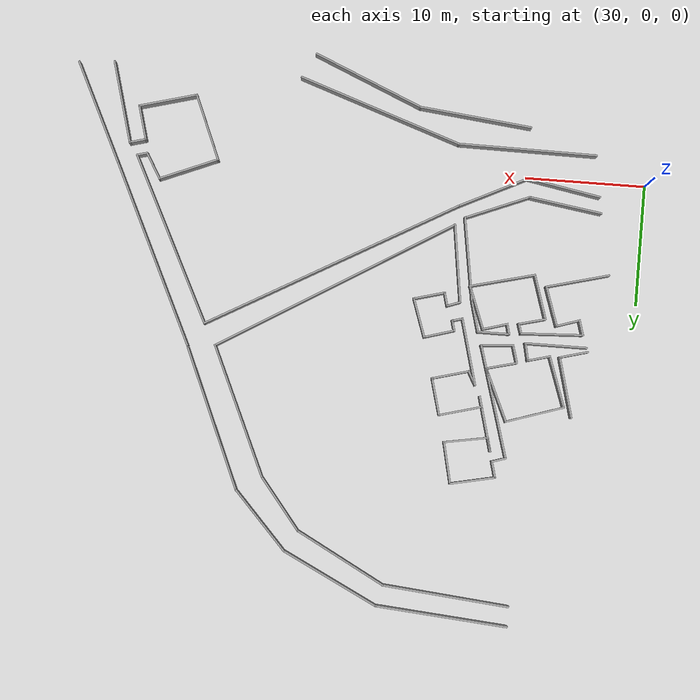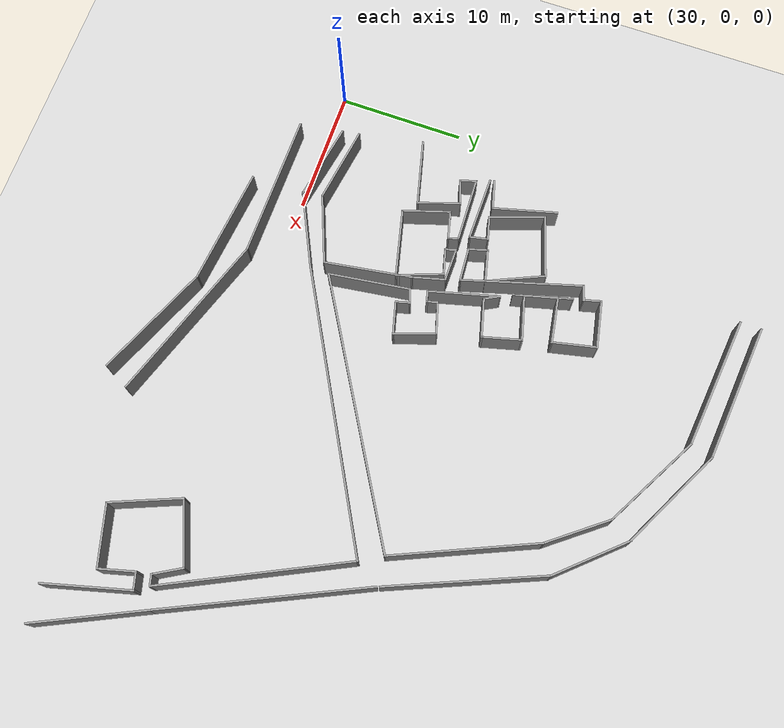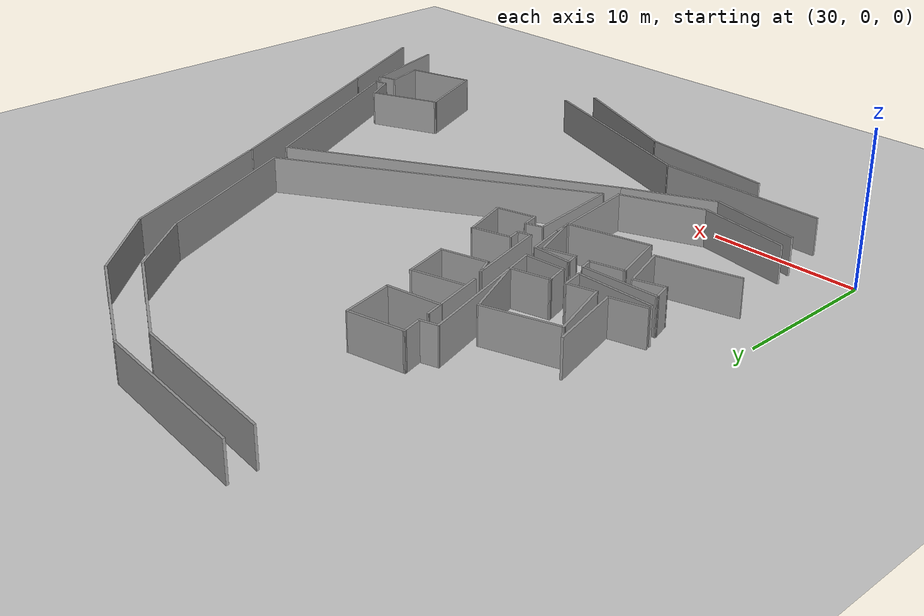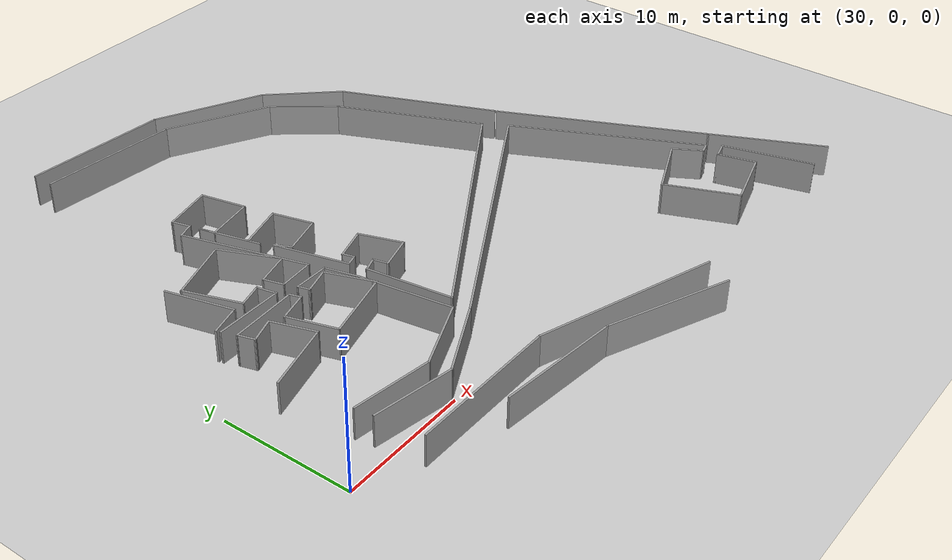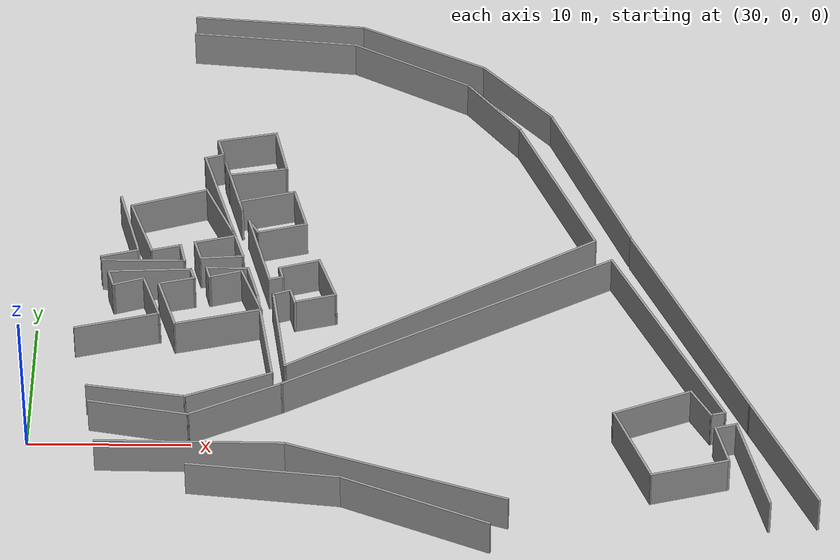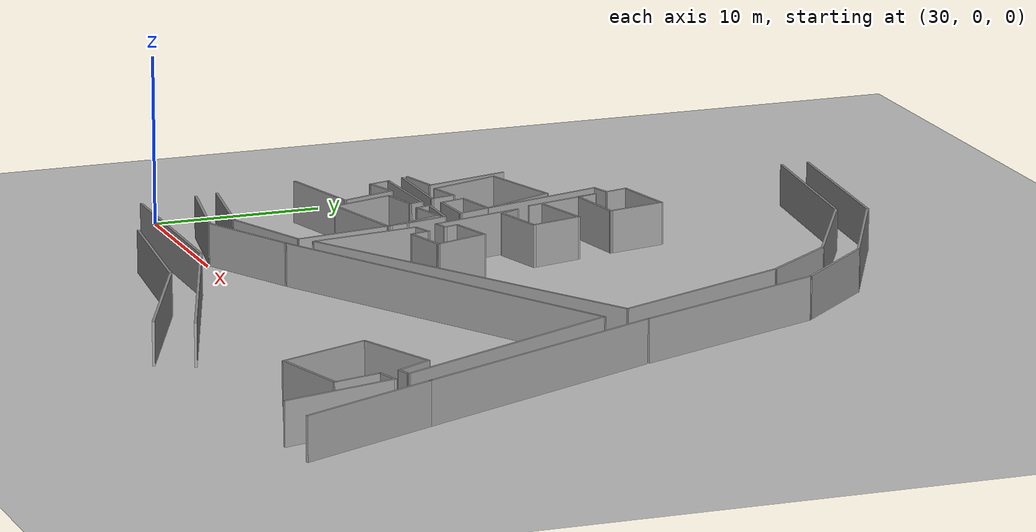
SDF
<sdf version="1.7">
 <world name="default">
  <include><uri>model://sun</uri></include>
  <include><uri>model://ground_plane</uri></include>
  <model name="final_max_v1">
   <pose>-2.52311 0.669104 0 0 -0 0</pose>
   <link name="Wall_122">
    <collision name="Wall_122_Collision">
     <geometry><box><size>11.1366 0.15 2.5</size></box></geometry>
     <pose>0 0 1.25 0 -0 0</pose>
    </collision>
    <visual name="Wall_122_Visual">
     <pose>0 0 1.25 0 -0 0</pose>
     <geometry><box><size>11.1366 0.15 2.5</size></box></geometry>
     <material>
      <script><uri>file://media/materials/scripts/gazebo.material</uri><name>Gazebo/Grey</name></script>
      <ambient>1 1 1 1</ambient>
     </material>
     <meta><layer>0</layer></meta>
    </visual>
    <pose>46.89 36.2808 0 0 -0 -0.083837</pose>
   </link>
   <link name="Wall_123">
    <collision name="Wall_123_Collision">
     <geometry><box><size>8.99588 0.15 2.5</size></box></geometry>
     <pose>0 0 1.25 0 -0 0</pose>
    </collision>
    <visual name="Wall_123_Visual">
     <pose>0 0 1.25 0 -0 0</pose>
     <geometry><box><size>8.99588 0.15 2.5</size></box></geometry>
     <material>
      <script><uri>file://media/materials/scripts/gazebo.material</uri><name>Gazebo/Grey</name></script>
      <ambient>1 1 1 1</ambient>
     </material>
     <meta><layer>0</layer></meta>
    </visual>
    <pose>56.32 33.8428 0 0 -0 -0.463648</pose>
   </link>
   <link name="Wall_124">
    <collision name="Wall_124_Collision">
     <geometry><box><size>6.5786 0.15 2.5</size></box></geometry>
     <pose>0 0 1.25 0 -0 0</pose>
    </collision>
    <visual name="Wall_124_Visual">
     <pose>0 0 1.25 0 -0 0</pose>
     <geometry><box><size>6.5786 0.15 2.5</size></box></geometry>
     <material>
      <script><uri>file://media/materials/scripts/gazebo.material</uri><name>Gazebo/Grey</name></script>
      <ambient>1 1 1 1</ambient>
     </material>
     <meta><layer>0</layer></meta>
    </visual>
    <pose>62.4457 29.4933 0 0 -0 -0.829799</pose>
   </link>
   <link name="Wall_136">
    <collision name="Wall_136_Collision">
     <geometry><box><size>9.49695 0.15 2.5</size></box></geometry>
     <pose>0 0 1.25 0 -0 0</pose>
    </collision>
    <visual name="Wall_136_Visual">
     <pose>0 0 1.25 0 -0 0</pose>
     <geometry><box><size>9.49695 0.15 2.5</size></box></geometry>
     <material>
      <script><uri>file://media/materials/scripts/gazebo.material</uri><name>Gazebo/Grey</name></script>
      <ambient>1 1 1 1</ambient>
     </material>
     <meta><layer>0</layer></meta>
    </visual>
    <pose>47.1077 -5.22792 0 0 -0 -0.108483</pose>
   </link>
   <link name="Wall_137">
    <collision name="Wall_137_Collision">
     <geometry><box><size>9.83843 0.15 2.5</size></box></geometry>
     <pose>0 0 1.25 0 -0 0</pose>
    </collision>
    <visual name="Wall_137_Visual">
     <pose>0 0 1.25 0 -0 0</pose>
     <geometry><box><size>9.83843 0.15 2.5</size></box></geometry>
     <material>
      <script><uri>file://media/materials/scripts/gazebo.material</uri><name>Gazebo/Grey</name></script>
      <ambient>1 1 1 1</ambient>
     </material>
     <meta><layer>0</layer></meta>
    </visual>
    <pose>56.2157 -7.61992 0 0 -0 -0.399904</pose>
   </link>
   <link name="Wall_223">
    <collision name="Wall_223_Collision">
     <geometry><box><size>10.6867 0.15 2.5</size></box></geometry>
     <pose>0 0 1.25 0 -0 0</pose>
    </collision>
    <visual name="Wall_223_Visual">
     <pose>0 0 1.25 0 -0 0</pose>
     <geometry><box><size>10.6867 0.15 2.5</size></box></geometry>
     <material>
      <script><uri>file://media/materials/scripts/gazebo.material</uri><name>Gazebo/Grey</name></script>
      <ambient>1 1 1 1</ambient>
     </material>
     <meta><layer>0</layer></meta>
    </visual>
    <pose>46.6509 34.5758 0 0 -0 -0.096193</pose>
   </link>
   <link name="Wall_224">
    <collision name="Wall_224_Collision">
     <geometry><box><size>8.50581 0.15 2.5</size></box></geometry>
     <pose>0 0 1.25 0 -0 0</pose>
    </collision>
    <visual name="Wall_224_Visual">
     <pose>0 0 1.25 0 -0 0</pose>
     <geometry><box><size>8.50581 0.15 2.5</size></box></geometry>
     <material>
      <script><uri>file://media/materials/scripts/gazebo.material</uri><name>Gazebo/Grey</name></script>
      <ambient>1 1 1 1</ambient>
     </material>
     <meta><layer>0</layer></meta>
    </visual>
    <pose>55.5749 32.0918 0 0 -0 -0.493196</pose>
   </link>
   <link name="Wall_225">
    <collision name="Wall_225_Collision">
     <geometry><box><size>5.52393 0.15 2.5</size></box></geometry>
     <pose>0 0 1.25 0 -0 0</pose>
    </collision>
    <visual name="Wall_225_Visual">
     <pose>0 0 1.25 0 -0 0</pose>
     <geometry><box><size>5.52393 0.15 2.5</size></box></geometry>
     <material>
      <script><uri>file://media/materials/scripts/gazebo.material</uri><name>Gazebo/Grey</name></script>
      <ambient>1 1 1 1</ambient>
     </material>
     <meta><layer>0</layer></meta>
    </visual>
    <pose>60.9109 27.9978 0 0 -0 -0.90675</pose>
   </link>
   <link name="Wall_226">
    <collision name="Wall_226_Collision">
     <geometry><box><size>11.7237 0.15 2.5</size></box></geometry>
     <pose>0 0 1.25 0 -0 0</pose>
    </collision>
    <visual name="Wall_226_Visual">
     <pose>0 0 1.25 0 -0 0</pose>
     <geometry><box><size>11.7237 0.15 2.5</size></box></geometry>
     <material>
      <script><uri>file://media/materials/scripts/gazebo.material</uri><name>Gazebo/Grey</name></script>
      <ambient>1 1 1 1</ambient>
     </material>
     <meta><layer>0</layer></meta>
    </visual>
    <pose>64.9129 20.5918 0 0 -0 -1.15338</pose>
   </link>
   <link name="Wall_229">
    <collision name="Wall_229_Collision">
     <geometry><box><size>12.5433 0.15 2.5</size></box></geometry>
     <pose>0 0 1.25 0 -0 0</pose>
    </collision>
    <visual name="Wall_229_Visual">
     <pose>0 0 1.25 0 -0 0</pose>
     <geometry><box><size>12.5433 0.15 2.5</size></box></geometry>
     <material>
      <script><uri>file://media/materials/scripts/gazebo.material</uri><name>Gazebo/Grey</name></script>
      <ambient>1 1 1 1</ambient>
     </material>
     <meta><layer>0</layer></meta>
    </visual>
    <pose>67.0397 21.4191 0 0 -0 -1.16884</pose>
   </link>
   <link name="Wall_246">
    <collision name="Wall_246_Collision">
     <geometry><box><size>5.25 0.15 2.5</size></box></geometry>
     <pose>0 0 1.25 0 -0 0</pose>
    </collision>
    <visual name="Wall_246_Visual">
     <pose>0 0 1.25 0 -0 0</pose>
     <geometry><box><size>5.25 0.15 2.5</size></box></geometry>
     <material>
      <script><uri>file://media/materials/scripts/gazebo.material</uri><name>Gazebo/Grey</name></script>
      <ambient>1 1 1 1</ambient>
     </material>
     <meta><layer>0</layer></meta>
    </visual>
    <pose>38.0136 16.6136 0 0 -0 -1.309</pose>
   </link>
   <link name="Wall_247">
    <collision name="Wall_247_Collision">
     <geometry><box><size>2.5 0.15 2.5</size></box></geometry>
     <pose>0 0 1.25 0 -0 0</pose>
    </collision>
    <visual name="Wall_247_Visual">
     <pose>0 0 1.25 0 -0 0</pose>
     <geometry><box><size>2.5 0.15 2.5</size></box></geometry>
     <material>
      <script><uri>file://media/materials/scripts/gazebo.material</uri><name>Gazebo/Grey</name></script>
      <ambient>1 1 1 1</ambient>
     </material>
     <meta><layer>0</layer></meta>
    </visual>
    <pose>37.5386 13.8464 0 0 -0 -2.87979</pose>
   </link>
   <link name="Wall_249">
    <collision name="Wall_249_Collision">
     <geometry><box><size>5.25 0.15 2.5</size></box></geometry>
     <pose>0 0 1.25 0 -0 0</pose>
    </collision>
    <visual name="Wall_249_Visual">
     <pose>0 0 1.25 0 -0 0</pose>
     <geometry><box><size>5.25 0.15 2.5</size></box></geometry>
     <material>
      <script><uri>file://media/materials/scripts/gazebo.material</uri><name>Gazebo/Grey</name></script>
      <ambient>1 1 1 1</ambient>
     </material>
     <meta><layer>0</layer></meta>
    </visual>
    <pose>39.0442 13.2042 0 0 -0 0</pose>
   </link>
   <link name="Wall_250">
    <collision name="Wall_250_Collision">
     <geometry><box><size>1.59344 0.15 2.5</size></box></geometry>
     <pose>0 0 1.25 0 -0 0</pose>
    </collision>
    <visual name="Wall_250_Visual">
     <pose>0 0 1.25 0 -0 0</pose>
     <geometry><box><size>1.59344 0.15 2.5</size></box></geometry>
     <material>
      <script><uri>file://media/materials/scripts/gazebo.material</uri><name>Gazebo/Grey</name></script>
      <ambient>1 1 1 1</ambient>
     </material>
     <meta><layer>0</layer></meta>
    </visual>
    <pose>41.4428 13.9098 0 0 -0 1.78212</pose>
   </link>
   <link name="Wall_251">
    <collision name="Wall_251_Collision">
     <geometry><box><size>2 0.15 2.5</size></box></geometry>
     <pose>0 0 1.25 0 -0 0</pose>
    </collision>
    <visual name="Wall_251_Visual">
     <pose>0 0 1.25 0 -0 0</pose>
     <geometry><box><size>2 0.15 2.5</size></box></geometry>
     <material>
      <script><uri>file://media/materials/scripts/gazebo.material</uri><name>Gazebo/Grey</name></script>
      <ambient>1 1 1 1</ambient>
     </material>
     <meta><layer>0</layer></meta>
    </visual>
    <pose>40.3979 14.3761 0 0 -0 -2.87979</pose>
   </link>
   <link name="Wall_252">
    <collision name="Wall_252_Collision">
     <geometry><box><size>4.54595 0.15 2.5</size></box></geometry>
     <pose>0 0 1.25 0 -0 0</pose>
    </collision>
    <visual name="Wall_252_Visual">
     <pose>0 0 1.25 0 -0 0</pose>
     <geometry><box><size>4.54595 0.15 2.5</size></box></geometry>
     <material>
      <script><uri>file://media/materials/scripts/gazebo.material</uri><name>Gazebo/Grey</name></script>
      <ambient>1 1 1 1</ambient>
     </material>
     <meta><layer>0</layer></meta>
    </visual>
    <pose>38.7724 16.2092 0 0 -0 1.91035</pose>
   </link>
   <link name="Wall_253">
    <collision name="Wall_253_Collision">
     <geometry><box><size>5.09377 0.15 2.5</size></box></geometry>
     <pose>0 0 1.25 0 -0 0</pose>
    </collision>
    <visual name="Wall_253_Visual">
     <pose>0 0 1.25 0 -0 0</pose>
     <geometry><box><size>5.09377 0.15 2.5</size></box></geometry>
     <material>
      <script><uri>file://media/materials/scripts/gazebo.material</uri><name>Gazebo/Grey</name></script>
      <ambient>1 1 1 1</ambient>
     </material>
     <meta><layer>0</layer></meta>
    </visual>
    <pose>40.3922 19.0425 0 0 -0 0.312901</pose>
   </link>
   <link name="Wall_254">
    <collision name="Wall_254_Collision">
     <geometry><box><size>4.85576 0.15 2.5</size></box></geometry>
     <pose>0 0 1.25 0 -0 0</pose>
    </collision>
    <visual name="Wall_254_Visual">
     <pose>0 0 1.25 0 -0 0</pose>
     <geometry><box><size>4.85576 0.15 2.5</size></box></geometry>
     <material>
      <script><uri>file://media/materials/scripts/gazebo.material</uri><name>Gazebo/Grey</name></script>
      <ambient>1 1 1 1</ambient>
     </material>
     <meta><layer>0</layer></meta>
    </visual>
    <pose>43.7125 17.6591 0 0 -0 -1.1466</pose>
   </link>
   <link name="Wall_255">
    <collision name="Wall_255_Collision">
     <geometry><box><size>2.71685 0.15 2.5</size></box></geometry>
     <pose>0 0 1.25 0 -0 0</pose>
    </collision>
    <visual name="Wall_255_Visual">
     <pose>0 0 1.25 0 -0 0</pose>
     <geometry><box><size>2.71685 0.15 2.5</size></box></geometry>
     <material>
      <script><uri>file://media/materials/scripts/gazebo.material</uri><name>Gazebo/Grey</name></script>
      <ambient>1 1 1 1</ambient>
     </material>
     <meta><layer>0</layer></meta>
    </visual>
    <pose>43.4358 15.2035 0 0 -0 -2.89661</pose>
   </link>
   <link name="Wall_256">
    <collision name="Wall_256_Collision">
     <geometry><box><size>1.66075 0.15 2.5</size></box></geometry>
     <pose>0 0 1.25 0 -0 0</pose>
    </collision>
    <visual name="Wall_256_Visual">
     <pose>0 0 1.25 0 -0 0</pose>
     <geometry><box><size>1.66075 0.15 2.5</size></box></geometry>
     <material>
      <script><uri>file://media/materials/scripts/gazebo.material</uri><name>Gazebo/Grey</name></script>
      <ambient>1 1 1 1</ambient>
     </material>
     <meta><layer>0</layer></meta>
    </visual>
    <pose>42.3982 14.1659 0 0 -0 -1.2925</pose>
   </link>
   <link name="Wall_257">
    <collision name="Wall_257_Collision">
     <geometry><box><size>2.78673 0.15 2.5</size></box></geometry>
     <pose>0 0 1.25 0 -0 0</pose>
    </collision>
    <visual name="Wall_257_Visual">
     <pose>0 0 1.25 0 -0 0</pose>
     <geometry><box><size>2.78673 0.15 2.5</size></box></geometry>
     <material>
      <script><uri>file://media/materials/scripts/gazebo.material</uri><name>Gazebo/Grey</name></script>
      <ambient>1 1 1 1</ambient>
     </material>
     <meta><layer>0</layer></meta>
    </visual>
    <pose>43.92 13.5433 0 0 -0 0.078784</pose>
   </link>
   <link name="Wall_258">
    <collision name="Wall_258_Collision">
     <geometry><box><size>9.73731 0.15 2.5</size></box></geometry>
     <pose>0 0 1.25 0 -0 0</pose>
    </collision>
    <visual name="Wall_258_Visual">
     <pose>0 0 1.25 0 -0 0</pose>
     <geometry><box><size>9.73731 0.15 2.5</size></box></geometry>
     <material>
      <script><uri>file://media/materials/scripts/gazebo.material</uri><name>Gazebo/Grey</name></script>
      <ambient>1 1 1 1</ambient>
     </material>
     <meta><layer>0</layer></meta>
    </visual>
    <pose>43.8854 18.2471 0 0 -0 1.85603</pose>
   </link>
   <link name="Wall_259">
    <collision name="Wall_259_Collision">
     <geometry><box><size>1.30954 0.15 2.5</size></box></geometry>
     <pose>0 0 1.25 0 -0 0</pose>
    </collision>
    <visual name="Wall_259_Visual">
     <pose>0 0 1.25 0 -0 0</pose>
     <geometry><box><size>1.30954 0.15 2.5</size></box></geometry>
     <material>
      <script><uri>file://media/materials/scripts/gazebo.material</uri><name>Gazebo/Grey</name></script>
      <ambient>1 1 1 1</ambient>
     </material>
     <meta><layer>0</layer></meta>
    </visual>
    <pose>43.0899 23.02 0 0 -0 0.302885</pose>
   </link>
   <link name="Wall_260">
    <collision name="Wall_260_Collision">
     <geometry><box><size>1.5 0.15 2.5</size></box></geometry>
     <pose>0 0 1.25 0 -0 0</pose>
    </collision>
    <visual name="Wall_260_Visual">
     <pose>0 0 1.25 0 -0 0</pose>
     <geometry><box><size>1.5 0.15 2.5</size></box></geometry>
     <material>
      <script><uri>file://media/materials/scripts/gazebo.material</uri><name>Gazebo/Grey</name></script>
      <ambient>1 1 1 1</ambient>
     </material>
     <meta><layer>0</layer></meta>
    </visual>
    <pose>43.4686 23.8449 0 0 -0 1.8326</pose>
   </link>
   <link name="Wall_261">
    <collision name="Wall_261_Collision">
     <geometry><box><size>3.89984 0.15 2.5</size></box></geometry>
     <pose>0 0 1.25 0 -0 0</pose>
    </collision>
    <visual name="Wall_261_Visual">
     <pose>0 0 1.25 0 -0 0</pose>
     <geometry><box><size>3.89984 0.15 2.5</size></box></geometry>
     <material>
      <script><uri>file://media/materials/scripts/gazebo.material</uri><name>Gazebo/Grey</name></script>
      <ambient>1 1 1 1</ambient>
     </material>
     <meta><layer>0</layer></meta>
    </visual>
    <pose>45.1287 24.8825 0 0 -0 0.207133</pose>
   </link>
   <link name="Wall_262">
    <collision name="Wall_262_Collision">
     <geometry><box><size>3.6238 0.15 2.5</size></box></geometry>
     <pose>0 0 1.25 0 -0 0</pose>
    </collision>
    <visual name="Wall_262_Visual">
     <pose>0 0 1.25 0 -0 0</pose>
     <geometry><box><size>3.6238 0.15 2.5</size></box></geometry>
     <material>
      <script><uri>file://media/materials/scripts/gazebo.material</uri><name>Gazebo/Grey</name></script>
      <ambient>1 1 1 1</ambient>
     </material>
     <meta><layer>0</layer></meta>
    </visual>
    <pose>47.344 23.5733 0 0 -0 -1.34997</pose>
   </link>
   <link name="Wall_263">
    <collision name="Wall_263_Collision">
     <geometry><box><size>3.80044 0.15 2.5</size></box></geometry>
     <pose>0 0 1.25 0 -0 0</pose>
    </collision>
    <visual name="Wall_263_Visual">
     <pose>0 0 1.25 0 -0 0</pose>
     <geometry><box><size>3.80044 0.15 2.5</size></box></geometry>
     <material>
      <script><uri>file://media/materials/scripts/gazebo.material</uri><name>Gazebo/Grey</name></script>
      <ambient>1 1 1 1</ambient>
     </material>
     <meta><layer>0</layer></meta>
    </visual>
    <pose>45.926 21.5673 0 0 -0 -2.97021</pose>
   </link>
   <link name="Wall_264">
    <collision name="Wall_264_Collision">
     <geometry><box><size>1.29082 0.15 2.5</size></box></geometry>
     <pose>0 0 1.25 0 -0 0</pose>
    </collision>
    <visual name="Wall_264_Visual">
     <pose>0 0 1.25 0 -0 0</pose>
     <geometry><box><size>1.29082 0.15 2.5</size></box></geometry>
     <material>
      <script><uri>file://media/materials/scripts/gazebo.material</uri><name>Gazebo/Grey</name></script>
      <ambient>1 1 1 1</ambient>
     </material>
     <meta><layer>0</layer></meta>
    </visual>
    <pose>43.9892 21.8094 0 0 -0 1.81577</pose>
   </link>
   <link name="Wall_265">
    <collision name="Wall_265_Collision">
     <geometry><box><size>4.75 0.15 2.5</size></box></geometry>
     <pose>0 0 1.25 0 -0 0</pose>
    </collision>
    <visual name="Wall_265_Visual">
     <pose>0 0 1.25 0 -0 0</pose>
     <geometry><box><size>4.75 0.15 2.5</size></box></geometry>
     <material>
      <script><uri>file://media/materials/scripts/gazebo.material</uri><name>Gazebo/Grey</name></script>
      <ambient>1 1 1 1</ambient>
     </material>
     <meta><layer>0</layer></meta>
    </visual>
    <pose>44.4461 20.1412 0 0 -0 -1.309</pose>
   </link>
   <link name="Wall_266">
    <collision name="Wall_266_Collision">
     <geometry><box><size>1 0.15 2.5</size></box></geometry>
     <pose>0 0 1.25 0 -0 0</pose>
    </collision>
    <visual name="Wall_266_Visual">
     <pose>0 0 1.25 0 -0 0</pose>
     <geometry><box><size>1 0.15 2.5</size></box></geometry>
     <material>
      <script><uri>file://media/materials/scripts/gazebo.material</uri><name>Gazebo/Grey</name></script>
      <ambient>1 1 1 1</ambient>
     </material>
     <meta><layer>0</layer></meta>
    </visual>
    <pose>44.9314 18.3301 0 0 -0 1.8326</pose>
   </link>
   <link name="Wall_267">
    <collision name="Wall_267_Collision">
     <geometry><box><size>3.75 0.15 2.5</size></box></geometry>
     <pose>0 0 1.25 0 -0 0</pose>
    </collision>
    <visual name="Wall_267_Visual">
     <pose>0 0 1.25 0 -0 0</pose>
     <geometry><box><size>3.75 0.15 2.5</size></box></geometry>
     <material>
      <script><uri>file://media/materials/scripts/gazebo.material</uri><name>Gazebo/Grey</name></script>
      <ambient>1 1 1 1</ambient>
     </material>
     <meta><layer>0</layer></meta>
    </visual>
    <pose>46.5601 19.2065 0 0 -0 0.261799</pose>
   </link>
   <link name="Wall_268">
    <collision name="Wall_268_Collision">
     <geometry><box><size>3.25 0.15 2.5</size></box></geometry>
     <pose>0 0 1.25 0 -0 0</pose>
    </collision>
    <visual name="Wall_268_Visual">
     <pose>0 0 1.25 0 -0 0</pose>
     <geometry><box><size>3.25 0.15 2.5</size></box></geometry>
     <material>
      <script><uri>file://media/materials/scripts/gazebo.material</uri><name>Gazebo/Grey</name></script>
      <ambient>1 1 1 1</ambient>
     </material>
     <meta><layer>0</layer></meta>
    </visual>
    <pose>48.6999 18.1752 0 0 -0 -1.309</pose>
   </link>
   <link name="Wall_269">
    <collision name="Wall_269_Collision">
     <geometry><box><size>3.25 0.15 2.5</size></box></geometry>
     <pose>0 0 1.25 0 -0 0</pose>
    </collision>
    <visual name="Wall_269_Visual">
     <pose>0 0 1.25 0 -0 0</pose>
     <geometry><box><size>3.25 0.15 2.5</size></box></geometry>
     <material>
      <script><uri>file://media/materials/scripts/gazebo.material</uri><name>Gazebo/Grey</name></script>
      <ambient>1 1 1 1</ambient>
     </material>
     <meta><layer>0</layer></meta>
    </visual>
    <pose>47.6039 16.2768 0 0 -0 -2.87979</pose>
   </link>
   <link name="Wall_270">
    <collision name="Wall_270_Collision">
     <geometry><box><size>1.3937 0.15 2.5</size></box></geometry>
     <pose>0 0 1.25 0 -0 0</pose>
    </collision>
    <visual name="Wall_270_Visual">
     <pose>0 0 1.25 0 -0 0</pose>
     <geometry><box><size>1.3937 0.15 2.5</size></box></geometry>
     <material>
      <script><uri>file://media/materials/scripts/gazebo.material</uri><name>Gazebo/Grey</name></script>
      <ambient>1 1 1 1</ambient>
     </material>
     <meta><layer>0</layer></meta>
    </visual>
    <pose>45.8088 16.4215 0 0 -0 2.07031</pose>
   </link>
   <link name="Wall_271">
    <collision name="Wall_271_Collision">
     <geometry><box><size>5.75 0.15 2.5</size></box></geometry>
     <pose>0 0 1.25 0 -0 0</pose>
    </collision>
    <visual name="Wall_271_Visual">
     <pose>0 0 1.25 0 -0 0</pose>
     <geometry><box><size>5.75 0.15 2.5</size></box></geometry>
     <material>
      <script><uri>file://media/materials/scripts/gazebo.material</uri><name>Gazebo/Grey</name></script>
      <ambient>1 1 1 1</ambient>
     </material>
     <meta><layer>0</layer></meta>
    </visual>
    <pose>46.2356 14.2628 0 0 -0 -1.309</pose>
   </link>
   <link name="Wall_272">
    <collision name="Wall_272_Collision">
     <geometry><box><size>1 0.15 2.5</size></box></geometry>
     <pose>0 0 1.25 0 -0 0</pose>
    </collision>
    <visual name="Wall_272_Visual">
     <pose>0 0 1.25 0 -0 0</pose>
     <geometry><box><size>1 0.15 2.5</size></box></geometry>
     <material>
      <script><uri>file://media/materials/scripts/gazebo.material</uri><name>Gazebo/Grey</name></script>
      <ambient>1 1 1 1</ambient>
     </material>
     <meta><layer>0</layer></meta>
    </visual>
    <pose>47.3709 11.6682 0 0 -0 0.261799</pose>
   </link>
   <link name="Wall_273">
    <collision name="Wall_273_Collision">
     <geometry><box><size>1 0.15 2.5</size></box></geometry>
     <pose>0 0 1.25 0 -0 0</pose>
    </collision>
    <visual name="Wall_273_Visual">
     <pose>0 0 1.25 0 -0 0</pose>
     <geometry><box><size>1 0.15 2.5</size></box></geometry>
     <material>
      <script><uri>file://media/materials/scripts/gazebo.material</uri><name>Gazebo/Grey</name></script>
      <ambient>1 1 1 1</ambient>
     </material>
     <meta><layer>0</layer></meta>
    </visual>
    <pose>47.6714 12.1887 0 0 -0 1.8326</pose>
   </link>
   <link name="Wall_274">
    <collision name="Wall_274_Collision">
     <geometry><box><size>2.70849 0.15 2.5</size></box></geometry>
     <pose>0 0 1.25 0 -0 0</pose>
    </collision>
    <visual name="Wall_274_Visual">
     <pose>0 0 1.25 0 -0 0</pose>
     <geometry><box><size>2.70849 0.15 2.5</size></box></geometry>
     <material>
      <script><uri>file://media/materials/scripts/gazebo.material</uri><name>Gazebo/Grey</name></script>
      <ambient>1 1 1 1</ambient>
     </material>
     <meta><layer>0</layer></meta>
    </visual>
    <pose>48.7888 12.9596 0 0 -0 0.285615</pose>
   </link>
   <link name="Wall_275">
    <collision name="Wall_275_Collision">
     <geometry><box><size>3.45989 0.15 2.5</size></box></geometry>
     <pose>0 0 1.25 0 -0 0</pose>
    </collision>
    <visual name="Wall_275_Visual">
     <pose>0 0 1.25 0 -0 0</pose>
     <geometry><box><size>3.45989 0.15 2.5</size></box></geometry>
     <material>
      <script><uri>file://media/materials/scripts/gazebo.material</uri><name>Gazebo/Grey</name></script>
      <ambient>1 1 1 1</ambient>
     </material>
     <meta><layer>0</layer></meta>
    </visual>
    <pose>50.5576 11.7562 0 0 -0 -1.23755</pose>
   </link>
   <link name="Wall_276">
    <collision name="Wall_276_Collision">
     <geometry><box><size>2.75 0.15 2.5</size></box></geometry>
     <pose>0 0 1.25 0 -0 0</pose>
    </collision>
    <visual name="Wall_276_Visual">
     <pose>0 0 1.25 0 -0 0</pose>
     <geometry><box><size>2.75 0.15 2.5</size></box></geometry>
     <material>
      <script><uri>file://media/materials/scripts/gazebo.material</uri><name>Gazebo/Grey</name></script>
      <ambient>1 1 1 1</ambient>
     </material>
     <meta><layer>0</layer></meta>
    </visual>
    <pose>49.8432 9.85581 0 0 -0 -2.87979</pose>
   </link>
   <link name="Wall_277">
    <collision name="Wall_277_Collision">
     <geometry><box><size>1.25 0.15 2.5</size></box></geometry>
     <pose>0 0 1.25 0 -0 0</pose>
    </collision>
    <visual name="Wall_277_Visual">
     <pose>0 0 1.25 0 -0 0</pose>
     <geometry><box><size>1.25 0.15 2.5</size></box></geometry>
     <material>
      <script><uri>file://media/materials/scripts/gazebo.material</uri><name>Gazebo/Grey</name></script>
      <ambient>1 1 1 1</ambient>
     </material>
     <meta><layer>0</layer></meta>
    </visual>
    <pose>48.4452 10.0506 0 0 -0 1.8326</pose>
   </link>
   <link name="Wall_279">
    <collision name="Wall_279_Collision">
     <geometry><box><size>2.75 0.15 2.5</size></box></geometry>
     <pose>0 0 1.25 0 -0 0</pose>
    </collision>
    <visual name="Wall_279_Visual">
     <pose>0 0 1.25 0 -0 0</pose>
     <geometry><box><size>2.75 0.15 2.5</size></box></geometry>
     <material>
      <script><uri>file://media/materials/scripts/gazebo.material</uri><name>Gazebo/Grey</name></script>
      <ambient>1 1 1 1</ambient>
     </material>
     <meta><layer>0</layer></meta>
    </visual>
    <pose>45.9379 11.294 0 0 -0 1.8326</pose>
   </link>
   <link name="Wall_280">
    <collision name="Wall_280_Collision">
     <geometry><box><size>2.75 0.15 2.5</size></box></geometry>
     <pose>0 0 1.25 0 -0 0</pose>
    </collision>
    <visual name="Wall_280_Visual">
     <pose>0 0 1.25 0 -0 0</pose>
     <geometry><box><size>2.75 0.15 2.5</size></box></geometry>
     <material>
      <script><uri>file://media/materials/scripts/gazebo.material</uri><name>Gazebo/Grey</name></script>
      <ambient>1 1 1 1</ambient>
     </material>
     <meta><layer>0</layer></meta>
    </visual>
    <pose>44.3014 12.5497 0 0 -0 3.14159</pose>
   </link>
   <link name="Wall_281">
    <collision name="Wall_281_Collision">
     <geometry><box><size>1 0.15 2.5</size></box></geometry>
     <pose>0 0 1.25 0 -0 0</pose>
    </collision>
    <visual name="Wall_281_Visual">
     <pose>0 0 1.25 0 -0 0</pose>
     <geometry><box><size>1 0.15 2.5</size></box></geometry>
     <material>
      <script><uri>file://media/materials/scripts/gazebo.material</uri><name>Gazebo/Grey</name></script>
      <ambient>1 1 1 1</ambient>
     </material>
     <meta><layer>0</layer></meta>
    </visual>
    <pose>43.1114 12.1392 0 0 -0 -1.309</pose>
   </link>
   <link name="Wall_282">
    <collision name="Wall_282_Collision">
     <geometry><box><size>2.21277 0.15 2.5</size></box></geometry>
     <pose>0 0 1.25 0 -0 0</pose>
    </collision>
    <visual name="Wall_282_Visual">
     <pose>0 0 1.25 0 -0 0</pose>
     <geometry><box><size>2.21277 0.15 2.5</size></box></geometry>
     <material>
      <script><uri>file://media/materials/scripts/gazebo.material</uri><name>Gazebo/Grey</name></script>
      <ambient>1 1 1 1</ambient>
     </material>
     <meta><layer>0</layer></meta>
    </visual>
    <pose>44.2128 12.0131 0 0 -0 0.27937</pose>
   </link>
   <link name="Wall_283">
    <collision name="Wall_283_Collision">
     <geometry><box><size>3.88124 0.15 2.5</size></box></geometry>
     <pose>0 0 1.25 0 -0 0</pose>
    </collision>
    <visual name="Wall_283_Visual">
     <pose>0 0 1.25 0 -0 0</pose>
     <geometry><box><size>3.88124 0.15 2.5</size></box></geometry>
     <material>
      <script><uri>file://media/materials/scripts/gazebo.material</uri><name>Gazebo/Grey</name></script>
      <ambient>1 1 1 1</ambient>
     </material>
     <meta><layer>0</layer></meta>
    </visual>
    <pose>45.8659 10.5532 0 0 -0 -1.20825</pose>
   </link>
   <link name="Wall_284">
    <collision name="Wall_284_Collision">
     <geometry><box><size>5.6061 0.15 2.5</size></box></geometry>
     <pose>0 0 1.25 0 -0 0</pose>
    </collision>
    <visual name="Wall_284_Visual">
     <pose>0 0 1.25 0 -0 0</pose>
     <geometry><box><size>5.6061 0.15 2.5</size></box></geometry>
     <material>
      <script><uri>file://media/materials/scripts/gazebo.material</uri><name>Gazebo/Grey</name></script>
      <ambient>1 1 1 1</ambient>
     </material>
     <meta><layer>0</layer></meta>
    </visual>
    <pose>43.8809 8.14718 0 0 -0 -2.89661</pose>
   </link>
   <link name="Wall_285">
    <collision name="Wall_285_Collision">
     <geometry><box><size>3.93562 0.15 2.5</size></box></geometry>
     <pose>0 0 1.25 0 -0 0</pose>
    </collision>
    <visual name="Wall_285_Visual">
     <pose>0 0 1.25 0 -0 0</pose>
     <geometry><box><size>3.93562 0.15 2.5</size></box></geometry>
     <material>
      <script><uri>file://media/materials/scripts/gazebo.material</uri><name>Gazebo/Grey</name></script>
      <ambient>1 1 1 1</ambient>
     </material>
     <meta><layer>0</layer></meta>
    </visual>
    <pose>40.6629 9.29002 0 0 -0 1.87747</pose>
   </link>
   <link name="Wall_286">
    <collision name="Wall_286_Collision">
     <geometry><box><size>2.38204 0.15 2.5</size></box></geometry>
     <pose>0 0 1.25 0 -0 0</pose>
    </collision>
    <visual name="Wall_286_Visual">
     <pose>0 0 1.25 0 -0 0</pose>
     <geometry><box><size>2.38204 0.15 2.5</size></box></geometry>
     <material>
      <script><uri>file://media/materials/scripts/gazebo.material</uri><name>Gazebo/Grey</name></script>
      <ambient>1 1 1 1</ambient>
     </material>
     <meta><layer>0</layer></meta>
    </visual>
    <pose>41.1742 11.3652 0 0 -0 0.244979</pose>
   </link>
   <link name="Wall_287">
    <collision name="Wall_287_Collision">
     <geometry><box><size>0.968127 0.15 2.5</size></box></geometry>
     <pose>0 0 1.25 0 -0 0</pose>
    </collision>
    <visual name="Wall_287_Visual">
     <pose>0 0 1.25 0 -0 0</pose>
     <geometry><box><size>0.968127 0.15 2.5</size></box></geometry>
     <material>
      <script><uri>file://media/materials/scripts/gazebo.material</uri><name>Gazebo/Grey</name></script>
      <ambient>1 1 1 1</ambient>
     </material>
     <meta><layer>0</layer></meta>
    </visual>
    <pose>42.1366 12.0268 0 0 -0 1.86929</pose>
   </link>
   <link name="Wall_288">
    <collision name="Wall_288_Collision">
     <geometry><box><size>5.2684 0.15 2.5</size></box></geometry>
     <pose>0 0 1.25 0 -0 0</pose>
    </collision>
    <visual name="Wall_288_Visual">
     <pose>0 0 1.25 0 -0 0</pose>
     <geometry><box><size>5.2684 0.15 2.5</size></box></geometry>
     <material>
      <script><uri>file://media/materials/scripts/gazebo.material</uri><name>Gazebo/Grey</name></script>
      <ambient>1 1 1 1</ambient>
     </material>
     <meta><layer>0</layer></meta>
    </visual>
    <pose>39.4599 12.2975 0 0 -0 -3.09457</pose>
   </link>
   <link name="Wall_289">
    <collision name="Wall_289_Collision">
     <geometry><box><size>1.40597 0.15 2.5</size></box></geometry>
     <pose>0 0 1.25 0 -0 0</pose>
    </collision>
    <visual name="Wall_289_Visual">
     <pose>0 0 1.25 0 -0 0</pose>
     <geometry><box><size>1.40597 0.15 2.5</size></box></geometry>
     <material>
      <script><uri>file://media/materials/scripts/gazebo.material</uri><name>Gazebo/Grey</name></script>
      <ambient>1 1 1 1</ambient>
     </material>
     <meta><layer>0</layer></meta>
    </visual>
    <pose>37.084 11.5757 0 0 -0 -1.27934</pose>
   </link>
   <link name="Wall_290">
    <collision name="Wall_290_Collision">
     <geometry><box><size>2.10926 0.15 2.5</size></box></geometry>
     <pose>0 0 1.25 0 -0 0</pose>
    </collision>
    <visual name="Wall_290_Visual">
     <pose>0 0 1.25 0 -0 0</pose>
     <geometry><box><size>2.10926 0.15 2.5</size></box></geometry>
     <material>
      <script><uri>file://media/materials/scripts/gazebo.material</uri><name>Gazebo/Grey</name></script>
      <ambient>1 1 1 1</ambient>
     </material>
     <meta><layer>0</layer></meta>
    </visual>
    <pose>38.1968 11.275 0 0 -0 0.312042</pose>
   </link>
   <link name="Wall_291">
    <collision name="Wall_291_Collision">
     <geometry><box><size>3.51678 0.15 2.5</size></box></geometry>
     <pose>0 0 1.25 0 -0 0</pose>
    </collision>
    <visual name="Wall_291_Visual">
     <pose>0 0 1.25 0 -0 0</pose>
     <geometry><box><size>3.51678 0.15 2.5</size></box></geometry>
     <material>
      <script><uri>file://media/materials/scripts/gazebo.material</uri><name>Gazebo/Grey</name></script>
      <ambient>1 1 1 1</ambient>
     </material>
     <meta><layer>0</layer></meta>
    </visual>
    <pose>39.6704 9.98175 0 0 -0 -1.2434</pose>
   </link>
   <link name="Wall_292">
    <collision name="Wall_292_Collision">
     <geometry><box><size>5.43122 0.15 2.5</size></box></geometry>
     <pose>0 0 1.25 0 -0 0</pose>
    </collision>
    <visual name="Wall_292_Visual">
     <pose>0 0 1.25 0 -0 0</pose>
     <geometry><box><size>5.43122 0.15 2.5</size></box></geometry>
     <material>
      <script><uri>file://media/materials/scripts/gazebo.material</uri><name>Gazebo/Grey</name></script>
      <ambient>1 1 1 1</ambient>
     </material>
     <meta><layer>0</layer></meta>
    </visual>
    <pose>37.6554 7.72613 0 0 -0 -2.88833</pose>
   </link>
   <link name="Wall_300">
    <collision name="Wall_300_Collision">
     <geometry><box><size>11.627 0.15 2.5</size></box></geometry>
     <pose>0 0 1.25 0 -0 0</pose>
    </collision>
    <visual name="Wall_300_Visual">
     <pose>0 0 1.25 0 -0 0</pose>
     <geometry><box><size>11.627 0.15 2.5</size></box></geometry>
     <material>
      <script><uri>file://media/materials/scripts/gazebo.material</uri><name>Gazebo/Grey</name></script>
      <ambient>1 1 1 1</ambient>
     </material>
     <meta><layer>0</layer></meta>
    </visual>
    <pose>42.5993 -2.85617 0 0 -0 -0.009391</pose>
   </link>
   <link name="Wall_301">
    <collision name="Wall_301_Collision">
     <geometry><box><size>14.3248 0.15 2.5</size></box></geometry>
     <pose>0 0 1.25 0 -0 0</pose>
    </collision>
    <visual name="Wall_301_Visual">
     <pose>0 0 1.25 0 -0 0</pose>
     <geometry><box><size>14.3248 0.15 2.5</size></box></geometry>
     <material>
      <script><uri>file://media/materials/scripts/gazebo.material</uri><name>Gazebo/Grey</name></script>
      <ambient>1 1 1 1</ambient>
     </material>
     <meta><layer>0</layer></meta>
    </visual>
    <pose>55.0472 -5.19275 0 0 -0 -0.327923</pose>
   </link>
   <link name="Wall_306">
    <collision name="Wall_306_Collision">
     <geometry><box><size>23.3769 0.15 2.5</size></box></geometry>
     <pose>0 0 1.25 0 -0 0</pose>
    </collision>
    <visual name="Wall_306_Visual">
     <pose>0 0 1.25 0 -0 0</pose>
     <geometry><box><size>23.3769 0.15 2.5</size></box></geometry>
     <material>
      <script><uri>file://media/materials/scripts/gazebo.material</uri><name>Gazebo/Grey</name></script>
      <ambient>1 1 1 1</ambient>
     </material>
     <meta><layer>0</layer></meta>
    </visual>
    <pose>58.1379 7.89318 0 0 -0 -2.63362</pose>
   </link>
   <link name="Wall_312">
    <collision name="Wall_312_Collision">
     <geometry><box><size>6.31592 0.15 2.5</size></box></geometry>
     <pose>0 0 1.25 0 -0 0</pose>
    </collision>
    <visual name="Wall_312_Visual">
     <pose>0 0 1.25 0 -0 0</pose>
     <geometry><box><size>6.31592 0.15 2.5</size></box></geometry>
     <material>
      <script><uri>file://media/materials/scripts/gazebo.material</uri><name>Gazebo/Grey</name></script>
      <ambient>1 1 1 1</ambient>
     </material>
     <meta><layer>0</layer></meta>
    </visual>
    <pose>39.3633 0.071902 0 0 -0 -0.179095</pose>
   </link>
   <link name="Wall_313">
    <collision name="Wall_313_Collision">
     <geometry><box><size>6.37091 0.15 2.5</size></box></geometry>
     <pose>0 0 1.25 0 -0 0</pose>
    </collision>
    <visual name="Wall_313_Visual">
     <pose>0 0 1.25 0 -0 0</pose>
     <geometry><box><size>6.37091 0.15 2.5</size></box></geometry>
     <material>
      <script><uri>file://media/materials/scripts/gazebo.material</uri><name>Gazebo/Grey</name></script>
      <ambient>1 1 1 1</ambient>
     </material>
     <meta><layer>0</layer></meta>
    </visual>
    <pose>45.1939 0.883513 0 0 -0 0.45281</pose>
   </link>
   <link name="Wall_315">
    <collision name="Wall_315_Collision">
     <geometry><box><size>7.1054 0.15 2.5</size></box></geometry>
     <pose>0 0 1.25 0 -0 0</pose>
    </collision>
    <visual name="Wall_315_Visual">
     <pose>0 0 1.25 0 -0 0</pose>
     <geometry><box><size>7.1054 0.15 2.5</size></box></geometry>
     <material>
      <script><uri>file://media/materials/scripts/gazebo.material</uri><name>Gazebo/Grey</name></script>
      <ambient>1 1 1 1</ambient>
     </material>
     <meta><layer>0</layer></meta>
    </visual>
    <pose>46.8212 6.60391 0 0 -0 -1.41289</pose>
   </link>
   <link name="Wall_316">
    <collision name="Wall_316_Collision">
     <geometry><box><size>5.79064 0.15 2.5</size></box></geometry>
     <pose>0 0 1.25 0 -0 0</pose>
    </collision>
    <visual name="Wall_316_Visual">
     <pose>0 0 1.25 0 -0 0</pose>
     <geometry><box><size>5.79064 0.15 2.5</size></box></geometry>
     <material>
      <script><uri>file://media/materials/scripts/gazebo.material</uri><name>Gazebo/Grey</name></script>
      <ambient>1 1 1 1</ambient>
     </material>
     <meta><layer>0</layer></meta>
    </visual>
    <pose>44.7516 2.11685 0 0 -0 -2.75911</pose>
   </link>
   <link name="Wall_317">
    <collision name="Wall_317_Collision">
     <geometry><box><size>6.23229 0.15 2.5</size></box></geometry>
     <pose>0 0 1.25 0 -0 0</pose>
    </collision>
    <visual name="Wall_317_Visual">
     <pose>0 0 1.25 0 -0 0</pose>
     <geometry><box><size>6.23229 0.15 2.5</size></box></geometry>
     <material>
      <script><uri>file://media/materials/scripts/gazebo.material</uri><name>Gazebo/Grey</name></script>
      <ambient>1 1 1 1</ambient>
     </material>
     <meta><layer>0</layer></meta>
    </visual>
    <pose>39.1276 1.51535 0 0 -0 2.9927</pose>
   </link>
   <link name="Wall_320">
    <collision name="Wall_320_Collision">
     <geometry><box><size>1.26963 0.15 2.5</size></box></geometry>
     <pose>0 0 1.25 0 -0 0</pose>
    </collision>
    <visual name="Wall_320_Visual">
     <pose>0 0 1.25 0 -0 0</pose>
     <geometry><box><size>1.26963 0.15 2.5</size></box></geometry>
     <material>
      <script><uri>file://media/materials/scripts/gazebo.material</uri><name>Gazebo/Grey</name></script>
      <ambient>1 1 1 1</ambient>
     </material>
     <meta><layer>0</layer></meta>
    </visual>
    <pose>47.7753 10.3944 0 0 -0 0.34139</pose>
   </link>
   <link name="Wall_322">
    <collision name="Wall_322_Collision">
     <geometry><box><size>6.58941 0.15 2.5</size></box></geometry>
     <pose>0 0 1.25 0 -0 0</pose>
    </collision>
    <visual name="Wall_322_Visual">
     <pose>0 0 1.25 0 -0 0</pose>
     <geometry><box><size>6.58941 0.15 2.5</size></box></geometry>
     <material>
      <script><uri>file://media/materials/scripts/gazebo.material</uri><name>Gazebo/Grey</name></script>
      <ambient>1 1 1 1</ambient>
     </material>
     <meta><layer>0</layer></meta>
    </visual>
    <pose>47.6989 7.01907 0 0 -0 -1.43022</pose>
   </link>
   <link name="Wall_324">
    <collision name="Wall_324_Collision">
     <geometry><box><size>22.4373 0.15 2.5</size></box></geometry>
     <pose>0 0 1.25 0 -0 0</pose>
    </collision>
    <visual name="Wall_324_Visual">
     <pose>0 0 1.25 0 -0 0</pose>
     <geometry><box><size>22.4373 0.15 2.5</size></box></geometry>
     <material>
      <script><uri>file://media/materials/scripts/gazebo.material</uri><name>Gazebo/Grey</name></script>
      <ambient>1 1 1 1</ambient>
     </material>
     <meta><layer>0</layer></meta>
    </visual>
    <pose>57.7044 9.56648 0 0 -0 0.540629</pose>
   </link>
   <link name="Wall_699">
    <collision name="Wall_699_Collision">
     <geometry><box><size>16.4712 0.15 2.5</size></box></geometry>
     <pose>0 0 1.25 0 -0 0</pose>
    </collision>
    <visual name="Wall_699_Visual">
     <pose>0 0 1.25 0 -0 0</pose>
     <geometry><box><size>16.4712 0.15 2.5</size></box></geometry>
     <material>
      <script><uri>file://media/materials/scripts/gazebo.material</uri><name>Gazebo/Grey</name></script>
      <ambient>1 1 1 1</ambient>
     </material>
     <meta><layer>0</layer></meta>
    </visual>
    <pose>73.0239 8.08144 0 0 -0 -1.13153</pose>
   </link>
   <link name="Wall_700">
    <collision name="Wall_700_Collision">
     <geometry><box><size>9.04858 0.15 2.5</size></box></geometry>
     <pose>0 0 1.25 0 -0 0</pose>
    </collision>
    <visual name="Wall_700_Visual">
     <pose>0 0 1.25 0 -0 0</pose>
     <geometry><box><size>9.04858 0.15 2.5</size></box></geometry>
     <material>
      <script><uri>file://media/materials/scripts/gazebo.material</uri><name>Gazebo/Grey</name></script>
      <ambient>1 1 1 1</ambient>
     </material>
     <meta><layer>0</layer></meta>
    </visual>
    <pose>78.4044 -3.3229 0 0 -0 -1.1271</pose>
   </link>
   <link name="Wall_702">
    <collision name="Wall_702_Collision">
     <geometry><box><size>7 0.15 2.5</size></box></geometry>
     <pose>0 0 1.25 0 -0 0</pose>
    </collision>
    <visual name="Wall_702_Visual">
     <pose>0 0 1.25 0 -0 0</pose>
     <geometry><box><size>7 0.15 2.5</size></box></geometry>
     <material>
      <script><uri>file://media/materials/scripts/gazebo.material</uri><name>Gazebo/Grey</name></script>
      <ambient>1 1 1 1</ambient>
     </material>
     <meta><layer>0</layer></meta>
    </visual>
    <pose>76.4994 -4.28059 0 0 -0 1.8326</pose>
   </link>
   <link name="Wall_703">
    <collision name="Wall_703_Collision">
     <geometry><box><size>1.5 0.15 2.5</size></box></geometry>
     <pose>0 0 1.25 0 -0 0</pose>
    </collision>
    <visual name="Wall_703_Visual">
     <pose>0 0 1.25 0 -0 0</pose>
     <geometry><box><size>1.5 0.15 2.5</size></box></geometry>
     <material>
      <script><uri>file://media/materials/scripts/gazebo.material</uri><name>Gazebo/Grey</name></script>
      <ambient>1 1 1 1</ambient>
     </material>
     <meta><layer>0</layer></meta>
    </visual>
    <pose>74.961 -1.147 0 0 -0 -2.87979</pose>
   </link>
   <link name="Wall_704">
    <collision name="Wall_704_Collision">
     <geometry><box><size>3 0.15 2.5</size></box></geometry>
     <pose>0 0 1.25 0 -0 0</pose>
    </collision>
    <visual name="Wall_704_Visual">
     <pose>0 0 1.25 0 -0 0</pose>
     <geometry><box><size>3 0.15 2.5</size></box></geometry>
     <material>
      <script><uri>file://media/materials/scripts/gazebo.material</uri><name>Gazebo/Grey</name></script>
      <ambient>1 1 1 1</ambient>
     </material>
     <meta><layer>0</layer></meta>
    </visual>
    <pose>74.6778 -2.69814 0 0 -0 -1.309</pose>
   </link>
   <link name="Wall_705">
    <collision name="Wall_705_Collision">
     <geometry><box><size>5 0.15 2.5</size></box></geometry>
     <pose>0 0 1.25 0 -0 0</pose>
    </collision>
    <visual name="Wall_705_Visual">
     <pose>0 0 1.25 0 -0 0</pose>
     <geometry><box><size>5 0.15 2.5</size></box></geometry>
     <material>
      <script><uri>file://media/materials/scripts/gazebo.material</uri><name>Gazebo/Grey</name></script>
      <ambient>1 1 1 1</ambient>
     </material>
     <meta><layer>0</layer></meta>
    </visual>
    <pose>72.7042 -4.70223 0 0 -0 -2.87979</pose>
   </link>
   <link name="Wall_706">
    <collision name="Wall_706_Collision">
     <geometry><box><size>5.81611 0.15 2.5</size></box></geometry>
     <pose>0 0 1.25 0 -0 0</pose>
    </collision>
    <visual name="Wall_706_Visual">
     <pose>0 0 1.25 0 -0 0</pose>
     <geometry><box><size>5.81611 0.15 2.5</size></box></geometry>
     <material>
      <script><uri>file://media/materials/scripts/gazebo.material</uri><name>Gazebo/Grey</name></script>
      <ambient>1 1 1 1</ambient>
     </material>
     <meta><layer>0</layer></meta>
    </visual>
    <pose>69.2813 -2.71095 0 0 -0 1.9621</pose>
   </link>
   <link name="Wall_707">
    <collision name="Wall_707_Collision">
     <geometry><box><size>5.26143 0.15 2.5</size></box></geometry>
     <pose>0 0 1.25 0 -0 0</pose>
    </collision>
    <visual name="Wall_707_Visual">
     <pose>0 0 1.25 0 -0 0</pose>
     <geometry><box><size>5.26143 0.15 2.5</size></box></geometry>
     <material>
      <script><uri>file://media/materials/scripts/gazebo.material</uri><name>Gazebo/Grey</name></script>
      <ambient>1 1 1 1</ambient>
     </material>
     <meta><layer>0</layer></meta>
    </visual>
    <pose>70.5667 0.874644 0 0 -0 0.3879</pose>
   </link>
   <link name="Wall_708">
    <collision name="Wall_708_Collision">
     <geometry><box><size>2.5 0.15 2.5</size></box></geometry>
     <pose>0 0 1.25 0 -0 0</pose>
    </collision>
    <visual name="Wall_708_Visual">
     <pose>0 0 1.25 0 -0 0</pose>
     <geometry><box><size>2.5 0.15 2.5</size></box></geometry>
     <material>
      <script><uri>file://media/materials/scripts/gazebo.material</uri><name>Gazebo/Grey</name></script>
      <ambient>1 1 1 1</ambient>
     </material>
     <meta><layer>0</layer></meta>
    </visual>
    <pose>73.52 0.823752 0 0 -0 -1.0472</pose>
   </link>
   <link name="Wall_709">
    <collision name="Wall_709_Collision">
     <geometry><box><size>1 0.15 2.5</size></box></geometry>
     <pose>0 0 1.25 0 -0 0</pose>
    </collision>
    <visual name="Wall_709_Visual">
     <pose>0 0 1.25 0 -0 0</pose>
     <geometry><box><size>1 0.15 2.5</size></box></geometry>
     <material>
      <script><uri>file://media/materials/scripts/gazebo.material</uri><name>Gazebo/Grey</name></script>
      <ambient>1 1 1 1</ambient>
     </material>
     <meta><layer>0</layer></meta>
    </visual>
    <pose>74.518 -0.083829 0 0 -0 0.261799</pose>
   </link>
   <link name="Wall_712">
    <collision name="Wall_712_Collision">
     <geometry><box><size>15.2104 0.15 2.5</size></box></geometry>
     <pose>0 0 1.25 0 -0 0</pose>
    </collision>
    <visual name="Wall_712_Visual">
     <pose>0 0 1.25 0 -0 0</pose>
     <geometry><box><size>15.2104 0.15 2.5</size></box></geometry>
     <material>
      <script><uri>file://media/materials/scripts/gazebo.material</uri><name>Gazebo/Grey</name></script>
      <ambient>1 1 1 1</ambient>
     </material>
     <meta><layer>0</layer></meta>
    </visual>
    <pose>71.6067 6.78411 0 0 -0 -1.11394</pose>
   </link>
   <static>1</static>
  </model>
 </world>
</sdf>
